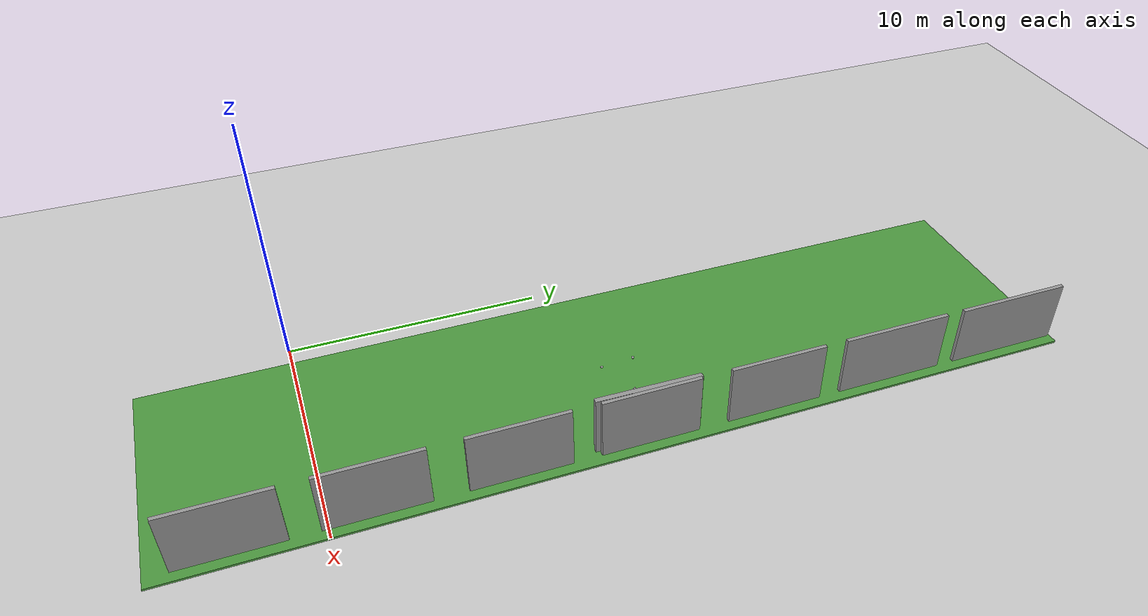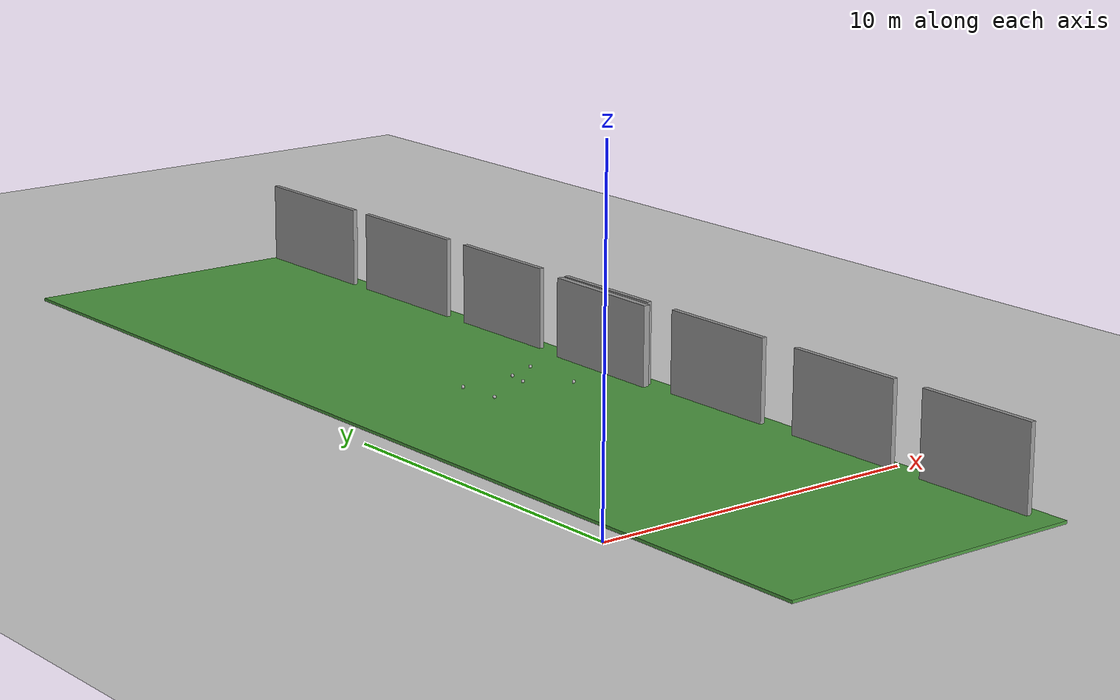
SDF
<sdf version="1.6">
 <world name="default">
  <model name="ground_plane">
   <static>1</static>
   <link name="link">
    <collision name="collision">
     <geometry><plane><normal>0 0 1</normal><size>100 100</size></plane></geometry>
     <surface>
      <contact><collide_bitmask>65535</collide_bitmask></contact>
      <friction><ode><mu>100</mu><mu2>50</mu2></ode></friction>
     </surface>
    </collision>
    <visual name="visual">
     <cast_shadows>0</cast_shadows>
     <geometry><plane><normal>0 0 1</normal><size>100 100</size></plane></geometry>
     <material>
      <script><uri>file://media/materials/scripts/gazebo.material</uri><name>Gazebo/Grey</name></script>
     </material>
    </visual>
   </link>
   <pose>-3.51447 11.9136 0 0 -0 0</pose>
  </model>
  <model name="screen">
   <pose>9.6 11.7963 0 0 -0 0</pose>
   <link name="Wall_0">
    <collision name="Wall_0_Collision">
     <geometry><box><size>3.75 0.15 2.5</size></box></geometry>
     <pose>0 0 1.25 0 -0 0</pose>
    </collision>
    <visual name="Wall_0_Visual">
     <pose>0 0 1.25 0 -0 0</pose>
     <geometry><box><size>3.75 0.15 2.5</size></box></geometry>
     <material>
      <script><uri>file://media/materials/scripts/gazebo.material</uri><name>Gazebo/Grey</name></script>
      <ambient>1 1 1 1</ambient>
     </material>
     <meta><layer>0</layer></meta>
    </visual>
    <pose>0 -14.926 0 0 -0 -1.5708</pose>
   </link>
   <link name="Wall_11">
    <collision name="Wall_11_Collision">
     <geometry><box><size>4.3 0.15 2.5</size></box></geometry>
     <pose>0 0 1.25 0 -0 0</pose>
    </collision>
    <visual name="Wall_11_Visual">
     <pose>0 0 1.25 0 -0 0</pose>
     <geometry><box><size>4.3 0.15 2.5</size></box></geometry>
     <material>
      <script><uri>file://media/materials/scripts/gazebo.material</uri><name>Gazebo/Grey</name></script>
      <ambient>1 1 1 1</ambient>
     </material>
     <meta><layer>0</layer></meta>
    </visual>
    <pose>0 9.451 0 0 -0 1.5708</pose>
   </link>
   <link name="Wall_13">
    <collision name="Wall_13_Collision">
     <geometry><box><size>4.5 0.15 2.5</size></box></geometry>
     <pose>0 0 1.25 0 -0 0</pose>
    </collision>
    <visual name="Wall_13_Visual">
     <pose>0 0 1.25 0 -0 0</pose>
     <geometry><box><size>4.5 0.15 2.5</size></box></geometry>
     <material>
      <script><uri>file://media/materials/scripts/gazebo.material</uri><name>Gazebo/Grey</name></script>
      <ambient>1 1 1 1</ambient>
     </material>
     <meta><layer>0</layer></meta>
    </visual>
    <pose>0 14.551 0 0 -0 1.5708</pose>
   </link>
   <link name="Wall_2">
    <collision name="Wall_2_Collision">
     <geometry><box><size>3.75 0.15 2.5</size></box></geometry>
     <pose>0 0 1.25 0 -0 0</pose>
    </collision>
    <visual name="Wall_2_Visual">
     <pose>0 0 1.25 0 -0 0</pose>
     <geometry><box><size>3.75 0.15 2.5</size></box></geometry>
     <material>
      <script><uri>file://media/materials/scripts/gazebo.material</uri><name>Gazebo/Grey</name></script>
      <ambient>1 1 1 1</ambient>
     </material>
     <meta><layer>0</layer></meta>
    </visual>
    <pose>0 -10.129 0 0 -0 -1.5708</pose>
   </link>
   <link name="Wall_4">
    <collision name="Wall_4_Collision">
     <geometry><box><size>3.75 0.15 2.5</size></box></geometry>
     <pose>0 0 1.25 0 -0 0</pose>
    </collision>
    <visual name="Wall_4_Visual">
     <pose>0 0 1.25 0 -0 0</pose>
     <geometry><box><size>3.75 0.15 2.5</size></box></geometry>
     <material>
      <script><uri>file://media/materials/scripts/gazebo.material</uri><name>Gazebo/Grey</name></script>
      <ambient>1 1 1 1</ambient>
     </material>
     <meta><layer>0</layer></meta>
    </visual>
    <pose>0 -5.126 0 0 -0 1.5708</pose>
   </link>
   <link name="Wall_6">
    <collision name="Wall_6_Collision">
     <geometry><box><size>3.75 0.15 2.5</size></box></geometry>
     <pose>0 0 1.25 0 -0 0</pose>
    </collision>
    <visual name="Wall_6_Visual">
     <pose>0 0 1.25 0 -0 0</pose>
     <geometry><box><size>3.75 0.15 2.5</size></box></geometry>
     <material>
      <script><uri>file://media/materials/scripts/gazebo.material</uri><name>Gazebo/Grey</name></script>
      <ambient>1 1 1 1</ambient>
     </material>
     <meta><layer>0</layer></meta>
    </visual>
    <pose>0 -0.324 0 0 -0 1.5708</pose>
   </link>
   <link name="Wall_9">
    <collision name="Wall_9_Collision">
     <geometry><box><size>3.75 0.15 2.5</size></box></geometry>
     <pose>0 0 1.25 0 -0 0</pose>
    </collision>
    <visual name="Wall_9_Visual">
     <pose>0 0 1.25 0 -0 0</pose>
     <geometry><box><size>3.75 0.15 2.5</size></box></geometry>
     <material>
      <script><uri>file://media/materials/scripts/gazebo.material</uri><name>Gazebo/Grey</name></script>
      <ambient>1 1 1 1</ambient>
     </material>
     <meta><layer>0</layer></meta>
    </visual>
    <pose>0 4.576 0 0 -0 1.5708</pose>
   </link>
   <static>1</static>
  </model>
  <model name="grey_wall_clone_1">
   <static>1</static>
   <link name="link">
    <pose>0 0 1.4 0 -0 0</pose>
    <collision name="collision"><geometry><box><size>4 0.2 2.4</size></box></geometry></collision>
    <visual name="visual">
     <cast_shadows>0</cast_shadows>
     <geometry><box><size>4 0.2 2.4</size></box></geometry>
     <material>
      <script>
       <uri>model://grey_wall/materials/scripts</uri>
       <uri>model://grey_wall/materials/textures</uri>
       <name>vrc/grey_wall</name>
      </script>
     </material>
    </visual>
   </link>
   <pose>9.39547 11.4287 -0.13155 0 0 -1.58718</pose>
  </model>
  <model name="grass_plane_0_clone">
   <static>1</static>
   <link name="link">
    <collision name="collision"><geometry><box><size>9.27422 34.5132 0.1</size></box></geometry></collision>
    <visual name="visual">
     <cast_shadows>0</cast_shadows>
     <geometry><box><size>9.27422 34.5132 0.1</size></box></geometry>
     <material>
      <script>
       <uri>model://grass_plane/materials/scripts</uri>
       <uri>model://grass_plane/materials/textures</uri>
       <name>vrc/grass</name>
      </script>
     </material>
    </visual>
   </link>
   <pose>5.4283 11.4097 0 0 -0 0</pose>
  </model>
  <model name="frc2016_ball_clone_4_clone_37">
   <pose>6.87322 11.921 0.099801 0 -0 0</pose>
   <link name="link">
    <inertial>
     <mass>0.213</mass>
     <inertia>
      <ixx>0.00322667</ixx>
      <ixy>0</ixy>
      <ixz>0</ixz>
      <iyy>0.00322667</iyy>
      <iyz>0</iyz>
      <izz>0.00322667</izz>
     </inertia>
    </inertial>
    <visual name="visual"><geometry><sphere><radius>0.0506132</radius></sphere></geometry></visual>
    <collision name="collision">
     <geometry><sphere><radius>0.0506132</radius></sphere></geometry>
     <surface>
      <bounce><restitution_coefficient>0.15937</restitution_coefficient><threshold>0</threshold></bounce>
      <contact><ode><max_vel>100</max_vel><min_depth>0.001</min_depth></ode></contact>
     </surface>
    </collision>
   </link>
  </model>
  <model name="frc2016_ball_clone_4_clone_38">
   <pose>8 13 0.099801 0 -0 0</pose>
   <link name="link">
    <inertial>
     <mass>0.213</mass>
     <inertia>
      <ixx>0.00322667</ixx>
      <ixy>0</ixy>
      <ixz>0</ixz>
      <iyy>0.00322667</iyy>
      <iyz>0</iyz>
      <izz>0.00322667</izz>
     </inertia>
    </inertial>
    <visual name="visual"><geometry><sphere><radius>0.0506132</radius></sphere></geometry></visual>
    <collision name="collision">
     <geometry><sphere><radius>0.0506132</radius></sphere></geometry>
     <surface>
      <bounce><restitution_coefficient>0.15937</restitution_coefficient><threshold>0</threshold></bounce>
      <contact><ode><max_vel>100</max_vel><min_depth>0.001</min_depth></ode></contact>
     </surface>
    </collision>
   </link>
  </model>
  <model name="frc2016_ball_clone_4_clone_40">
   <pose>5.27912 11.1802 0.099801 0 -0 0</pose>
   <link name="link">
    <inertial>
     <mass>0.213</mass>
     <inertia>
      <ixx>0.00322667</ixx>
      <ixy>0</ixy>
      <ixz>0</ixz>
      <iyy>0.00322667</iyy>
      <iyz>0</iyz>
      <izz>0.00322667</izz>
     </inertia>
    </inertial>
    <visual name="visual"><geometry><sphere><radius>0.0506132</radius></sphere></geometry></visual>
    <collision name="collision">
     <geometry><sphere><radius>0.0506132</radius></sphere></geometry>
     <surface>
      <bounce><restitution_coefficient>0.15937</restitution_coefficient><threshold>0</threshold></bounce>
      <contact><ode><max_vel>100</max_vel><min_depth>0.001</min_depth></ode></contact>
     </surface>
    </collision>
   </link>
  </model>
  <model name="frc2016_ball_clone_4_clone_41">
   <pose>5.17462 12.5101 0.099801 0 -0 0</pose>
   <link name="link">
    <inertial>
     <mass>0.213</mass>
     <inertia>
      <ixx>0.00322667</ixx>
      <ixy>0</ixy>
      <ixz>0</ixz>
      <iyy>0.00322667</iyy>
      <iyz>0</iyz>
      <izz>0.00322667</izz>
     </inertia>
    </inertial>
    <visual name="visual"><geometry><sphere><radius>0.0506132</radius></sphere></geometry></visual>
    <collision name="collision">
     <geometry><sphere><radius>0.0506132</radius></sphere></geometry>
     <surface>
      <bounce><restitution_coefficient>0.15937</restitution_coefficient><threshold>0</threshold></bounce>
      <contact><ode><max_vel>100</max_vel><min_depth>0.001</min_depth></ode></contact>
     </surface>
    </collision>
   </link>
  </model>
  <model name="frc2016_ball_clone_4_clone_42">
   <pose>7 12.5712 0.099801 0 -0 0</pose>
   <link name="link">
    <inertial>
     <mass>0.213</mass>
     <inertia>
      <ixx>0.00322667</ixx>
      <ixy>0</ixy>
      <ixz>0</ixz>
      <iyy>0.00322667</iyy>
      <iyz>0</iyz>
      <izz>0.00322667</izz>
     </inertia>
    </inertial>
    <visual name="visual"><geometry><sphere><radius>0.0506132</radius></sphere></geometry></visual>
    <collision name="collision">
     <geometry><sphere><radius>0.0506132</radius></sphere></geometry>
     <surface>
      <bounce><restitution_coefficient>0.15937</restitution_coefficient><threshold>0</threshold></bounce>
      <contact><ode><max_vel>100</max_vel><min_depth>0.001</min_depth></ode></contact>
     </surface>
    </collision>
   </link>
  </model>
  <model name="frc2016_ball_clone_4_clone_43">
   <pose>8 11 0.099801 0 -0 0</pose>
   <link name="link">
    <inertial>
     <mass>0.213</mass>
     <inertia>
      <ixx>0.00322667</ixx>
      <ixy>0</ixy>
      <ixz>0</ixz>
      <iyy>0.00322667</iyy>
      <iyz>0</iyz>
      <izz>0.00322667</izz>
     </inertia>
    </inertial>
    <visual name="visual"><geometry><sphere><radius>0.0506132</radius></sphere></geometry></visual>
    <collision name="collision">
     <geometry><sphere><radius>0.0506132</radius></sphere></geometry>
     <surface>
      <bounce><restitution_coefficient>0.15937</restitution_coefficient><threshold>0</threshold></bounce>
      <contact><ode><max_vel>100</max_vel><min_depth>0.001</min_depth></ode></contact>
     </surface>
    </collision>
   </link>
  </model>
 </world>
</sdf>
